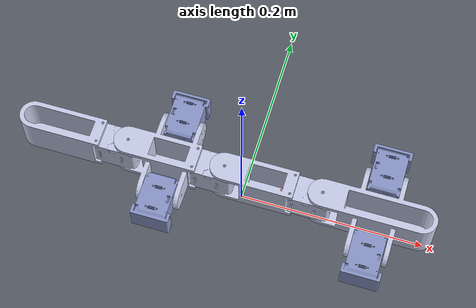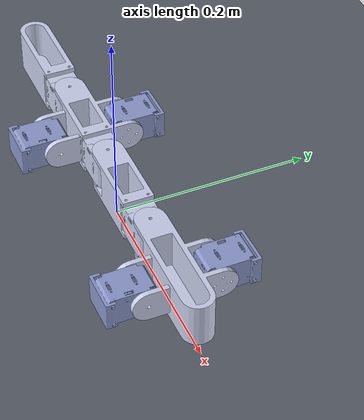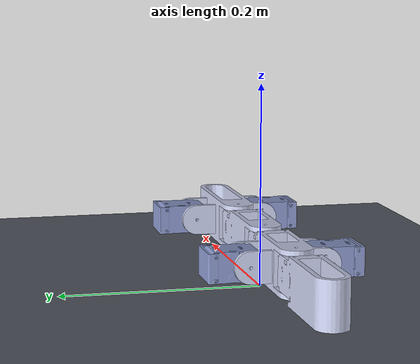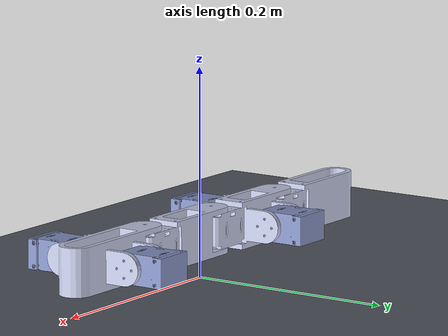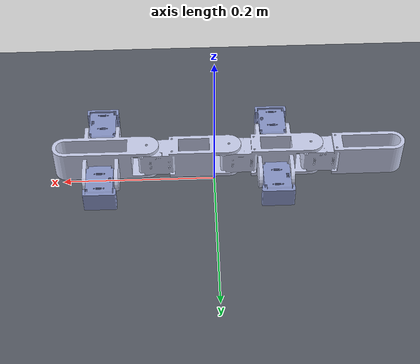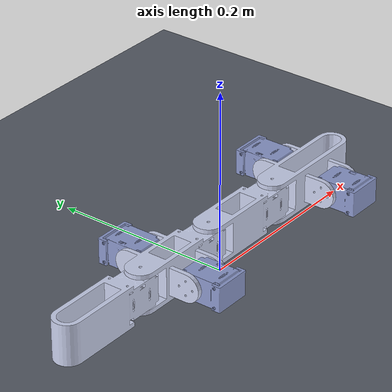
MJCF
<mujoco model="lizard_v1">
  <compiler angle="radian" meshdir="meshes"/>
  <option timestep="5e-4" integrator="implicitfast" cone="elliptic"/>

  <visual>
    <headlight ambient="0.4 0.4 0.4" diffuse="0.6 0.6 0.6"/>
    <map znear="0.001"/>
    <quality shadowsize="4096"/>
    <global offwidth="1280" offheight="720"/>
  </visual>

  <asset>
    <texture type="skybox" builtin="gradient" rgb1="0.6 0.75 0.9" rgb2="0.9 0.95 1.0" width="256" height="256"/>
    <texture name="grid" type="2d" builtin="checker" rgb1="0.30 0.32 0.36" rgb2="0.38 0.40 0.44"
             width="512" height="512" mark="edge" markrgb="0.55 0.55 0.55"/>
    <material name="grid" texture="grid" texrepeat="20 20" reflectance="0.05"/>
    <material name="body_mat" rgba="0.792 0.820 0.933 1"/>
    <material name="leg_mat" rgba="0.55 0.60 0.80 1"/>
    <mesh name="Mid"   content_type="model/stl" file="Mid.STL"/>
    <mesh name="Front" content_type="model/stl" file="Front.STL"/>
    <mesh name="FR"    content_type="model/stl" file="FR.STL"/>
    <mesh name="FL"    content_type="model/stl" file="FL.STL"/>
    <mesh name="Back"  content_type="model/stl" file="Back.STL"/>
    <mesh name="HR"    content_type="model/stl" file="HR.STL"/>
    <mesh name="HL"    content_type="model/stl" file="HL.STL"/>
    <mesh name="Tail"  content_type="model/stl" file="Tail.STL"/>
  </asset>

  <default>
    <!-- XL430: geared servo -> reflected rotor inertia (armature) + light friction -->
    <joint type="hinge" damping="0.005" armature="0.002" frictionloss="0.01"/>
    <geom type="mesh" material="body_mat" friction="1.0 0.005 0.0001" condim="3"
          solref="0.002 1" solimp="0.9 0.95 0.001"/>
    <!-- Servo position control, force-clipped at XL430 stall torque -->
    <position kp="5.0" kv="0.08" forcerange="-1.4 1.4"/>
  </default>

  <worldbody>
    <light directional="true" pos="0.5 -0.5 1.5" dir="-0.3 0.3 -1" castshadow="true"/>
    <geom name="floor" type="plane" size="5 5 0.05" material="grid" friction="1.0 0.005 0.0001"/>

    <camera name="track_side" mode="trackcom" pos="0.05 -0.65 0.35" xyaxes="1 0 0 0 0.5 0.9"/>
    <camera name="track_top"  mode="trackcom" pos="0 0 0.9" xyaxes="1 0 0 0 1 0"/>
    <camera name="diag"       mode="trackcom" pos="0.4 -0.4 0.35" xyaxes="0.7 0.7 0 -0.3 0.3 0.9"/>

    <body name="Mid" pos="0 0 0.042">
      <freejoint name="root"/>
      <site name="imu" pos="0.046 0 0" size="0.004" rgba="1 0 0 0.5"/>
      <inertial pos="0.0460664 -0.000153726 4.25496e-05" quat="0.486405 0.513301 0.513274 0.486294"
                mass="0.0898677" diaginertia="4.51353e-05 4.07987e-05 2.0249e-05"/>
      <geom name="Mid" mesh="Mid"/>

      <body name="Front" pos="0.086893 -0.0002914 0.024312" quat="0.499998 0.5 0.500002 0.5">
        <inertial pos="0 -0.0245795 0.0596822" quat="0.708234 0.00620906 -0.0167379 0.705752"
                  mass="0.0891758" diaginertia="0.000129217 0.000118444 4.58185e-05"/>
        <joint name="Front" axis="0 -1 0"/>
        <geom name="Front" mesh="Front"/>

        <body name="FR" pos="-0.0355 -0.02265 0.08125" quat="0.499998 0.5 0.500002 0.5">
          <inertial pos="3.7893e-05 -0.0237785 -0.0144928" quat="0.706896 -0.00125997 0.000668069 0.707316"
                    mass="0.0475903" diaginertia="1.03389e-05 9.42431e-06 5.2829e-06"/>
          <joint name="FR" axis="0 -1 0"/>
          <geom name="FR" mesh="FR" material="leg_mat"/>
        </body>
        <body name="FL" pos="0.0355 -0.02265 0.03595" quat="0.499998 -0.5 -0.500002 0.5">
          <inertial pos="3.7893e-05 -0.0237785 -0.0144928" quat="0.706896 -0.00125997 0.000668069 0.707316"
                    mass="0.0475903" diaginertia="1.03389e-05 9.42431e-06 5.2829e-06"/>
          <joint name="FL" axis="0 -1 0"/>
          <geom name="FL" mesh="FL" material="leg_mat"/>
        </body>
      </body>

      <body name="Back" pos="-0.018607 -4.1403e-05 0.023312" quat="0.499998 0.5 0.500002 0.5">
        <inertial pos="0.000157176 -0.0233926 -0.0439663" quat="0.70797 -0.0151373 -0.0404873 0.704918"
                  mass="0.108746" diaginertia="6.9175e-05 5.59373e-05 4.20566e-05"/>
        <joint name="Back" axis="0 -1 0"/>
        <geom name="Back" mesh="Back"/>

        <body name="HR" pos="-0.03525 -0.02265 -0.0362" quat="0.499998 0.5 0.500002 0.5">
          <inertial pos="3.7893e-05 -0.0237785 -0.0144928" quat="0.706896 -0.00125997 0.000668069 0.707316"
                    mass="0.0475903" diaginertia="1.03389e-05 9.42431e-06 5.2829e-06"/>
          <joint name="HR" axis="0 1 0"/>
          <geom name="HR" mesh="HR" material="leg_mat"/>
        </body>
        <body name="HL" pos="0.03575 -0.02265 -0.0815" quat="0.499998 -0.5 -0.500002 0.5">
          <inertial pos="3.7893e-05 -0.0237785 -0.0144928" quat="0.706896 -0.00125997 0.000668069 0.707316"
                    mass="0.0475903" diaginertia="1.03389e-05 9.42431e-06 5.2829e-06"/>
          <joint name="HL" axis="0 -1 0"/>
          <geom name="HL" mesh="HL" material="leg_mat"/>
        </body>

        <body name="Tail" pos="0.00025 0 -0.1055">
          <inertial pos="0.000147554 -0.0253375 -0.0472264" quat="0.999982 -0.00601287 -4.48842e-05 -9.47637e-05"
                    mass="0.0985328" diaginertia="6.14186e-05 5.84009e-05 2.2324e-05"/>
          <joint name="Tail" axis="0 -1 0"/>
          <geom name="Tail" mesh="Tail"/>
        </body>
      </body>
    </body>
  </worldbody>

  <actuator>
    <!-- Spine -->
    <position name="Front" joint="Front"/>
    <position name="Back"  joint="Back"/>
    <position name="Tail"  joint="Tail"/>
    <!-- Legs -->
    <position name="FR" joint="FR"/>
    <position name="FL" joint="FL"/>
    <position name="HR" joint="HR"/>
    <position name="HL" joint="HL"/>
  </actuator>

  <sensor>
    <framepos  name="body_pos"  objtype="body" objname="Mid"/>
    <framequat name="body_quat" objtype="body" objname="Mid"/>
    <velocimeter name="body_vel" site="imu"/>
    <accelerometer name="imu_acc" site="imu"/>
    <gyro name="imu_gyro" site="imu"/>
    <jointpos name="q_Front" joint="Front"/>
    <jointpos name="q_Back"  joint="Back"/>
    <jointpos name="q_Tail"  joint="Tail"/>
    <jointpos name="q_FR" joint="FR"/>
    <jointpos name="q_FL" joint="FL"/>
    <jointpos name="q_HR" joint="HR"/>
    <jointpos name="q_HL" joint="HL"/>
    <jointvel name="dq_Front" joint="Front"/>
    <jointvel name="dq_Back"  joint="Back"/>
    <jointvel name="dq_Tail"  joint="Tail"/>
    <jointvel name="dq_FR" joint="FR"/>
    <jointvel name="dq_FL" joint="FL"/>
    <jointvel name="dq_HR" joint="HR"/>
    <jointvel name="dq_HL" joint="HL"/>
    <actuatorfrc name="tau_Front" actuator="Front"/>
    <actuatorfrc name="tau_Back"  actuator="Back"/>
    <actuatorfrc name="tau_Tail"  actuator="Tail"/>
    <actuatorfrc name="tau_FR" actuator="FR"/>
    <actuatorfrc name="tau_FL" actuator="FL"/>
    <actuatorfrc name="tau_HR" actuator="HR"/>
    <actuatorfrc name="tau_HL" actuator="HL"/>
  </sensor>

  <keyframe>
    <!-- qpos joint order: Front FR FL Back HR HL Tail
         ctrl order:       Front Back Tail FR FL HR HL
         legs flat / parallel to body (matches configs offset) -->
    <key name="stand"
         qpos="0 0 0.04 1 0 0 0   0 -0.165 -0.165 0 0.165 -0.165 0"
         ctrl="0 0 0   -0.165 -0.165 0.165 -0.165"/>
  </keyframe>
</mujoco>
